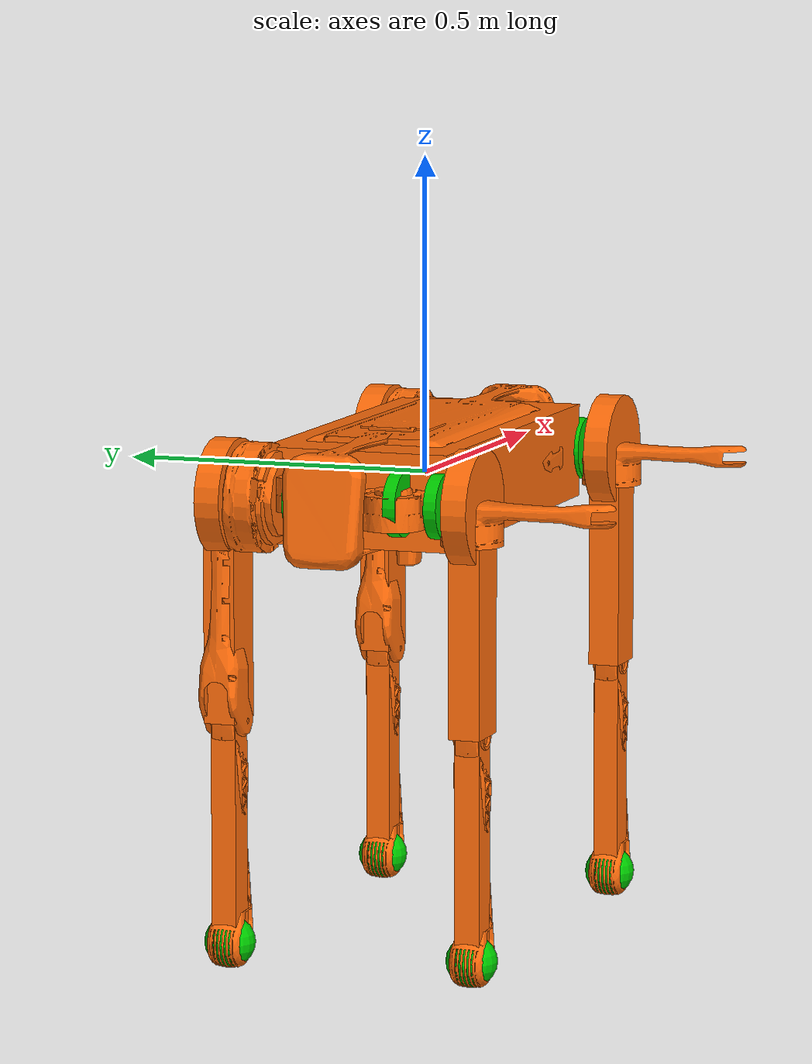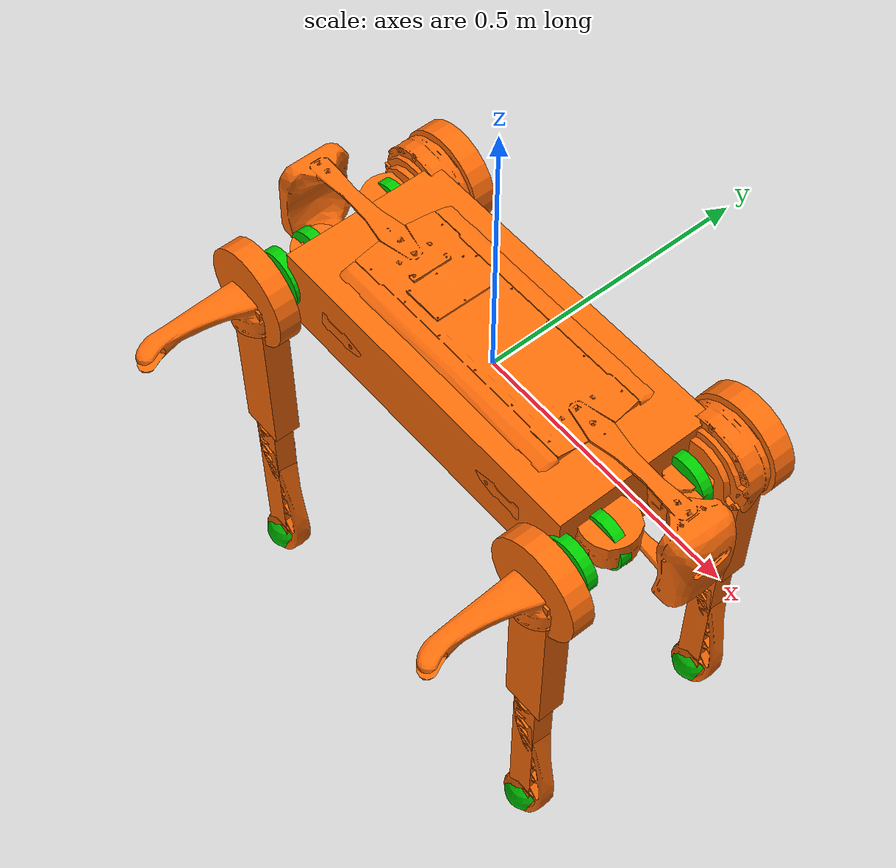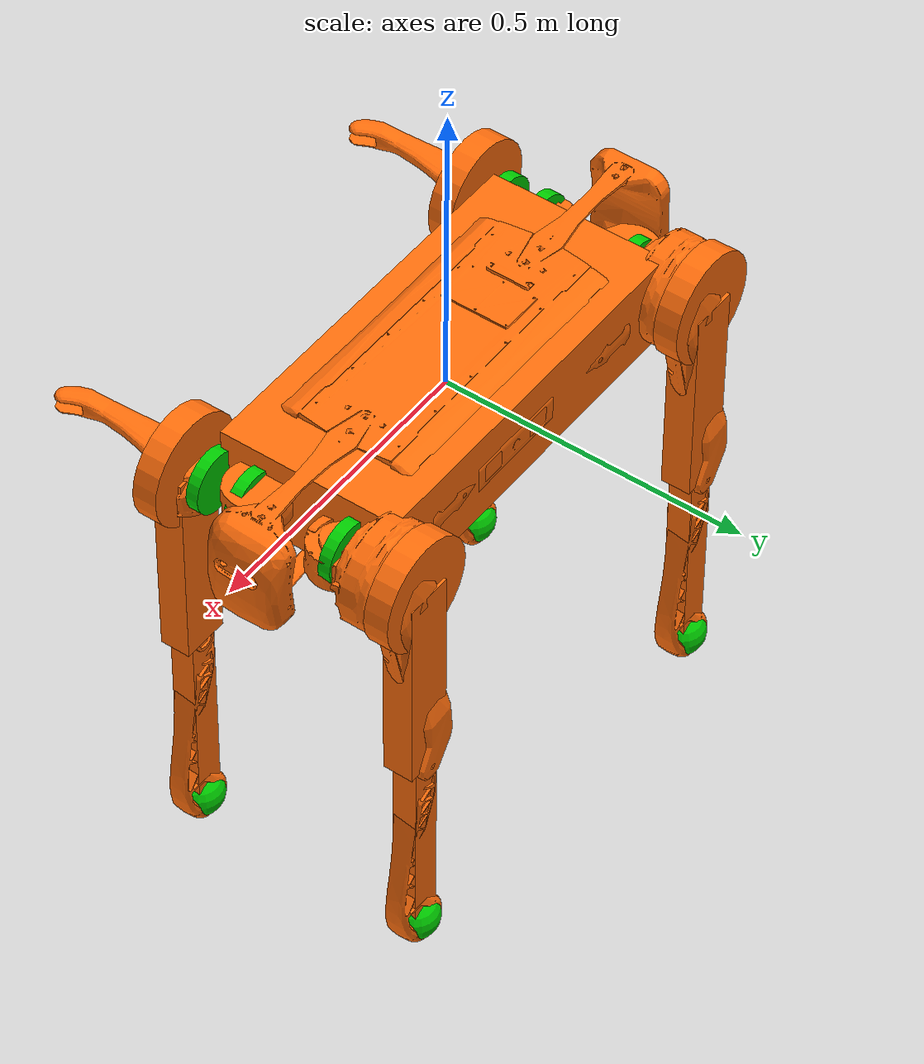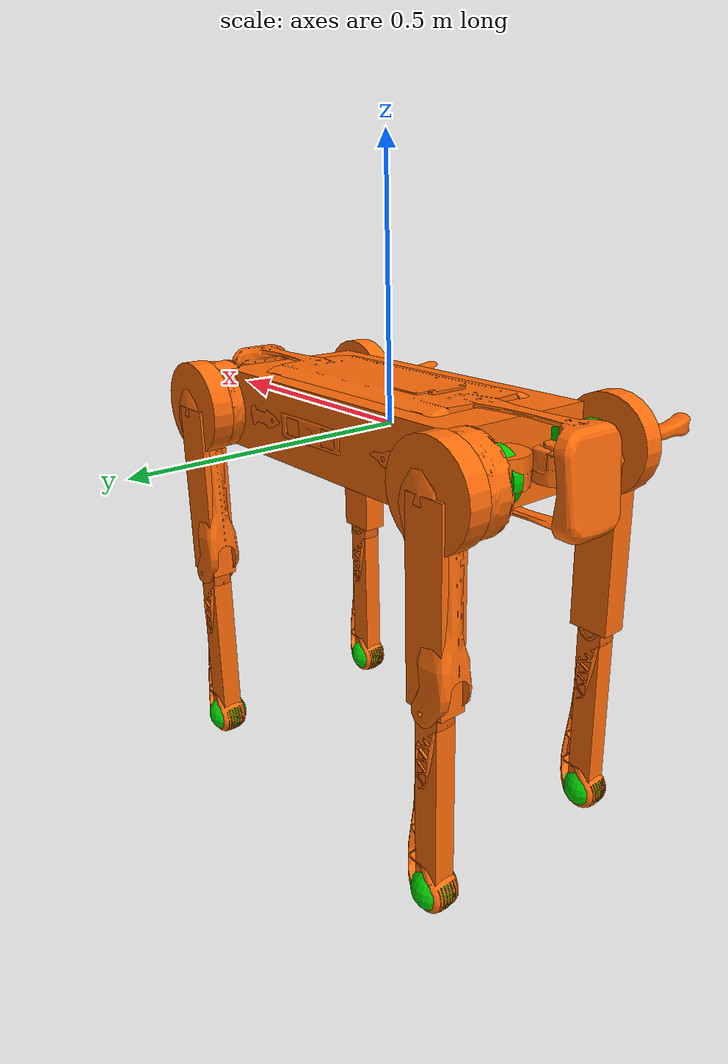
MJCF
<mujoco model="b1_description">
  <compiler angle="radian" meshdir="../meshes/"/>
  <asset>
    <mesh name="trunk" file="trunk.stl"/>
    <mesh name="hip" file="hip.stl"/>
    <mesh name="thigh_mirror" file="thigh_mirror.stl"/>
    <mesh name="calf" file="calf.stl"/>
    <mesh name="thigh" file="thigh.stl"/>
  </asset>
  <worldbody>
    <geom type="mesh" contype="0" conaffinity="0" group="1" density="0" rgba="1 0.423529 0.0392157 1" mesh="trunk"/>
    <geom size="0.3235 0.15 0.075" type="box" rgba="1 0.423529 0.0392157 1"/>
    <geom size="0.0005 0.0005 0.0005" type="box" contype="0" conaffinity="0" group="1" density="0" rgba="0.8 0 0 1"/>
    <geom size="0.0005 0.0005 0.0005" type="box" rgba="0.8 0 0 1"/>
    <geom size="0.05 0.01" pos="0.1955 -0.072 0" quat="0.707107 0 0.707107 0" type="cylinder" contype="0" conaffinity="0" group="1" density="0" rgba="0 0.8 0 1"/>
    <geom size="0.05 0.01" pos="0.1955 -0.072 0" quat="0.707107 0 0.707107 0" type="cylinder" rgba="0 0.8 0 1"/>
    <geom size="0.05 0.01" pos="0.1955 0.072 0" quat="0.707107 0 0.707107 0" type="cylinder" contype="0" conaffinity="0" group="1" density="0" rgba="0 0.8 0 1"/>
    <geom size="0.05 0.01" pos="0.1955 0.072 0" quat="0.707107 0 0.707107 0" type="cylinder" rgba="0 0.8 0 1"/>
    <geom size="0.05 0.01" pos="-0.1955 -0.072 0" quat="0.707107 0 0.707107 0" type="cylinder" contype="0" conaffinity="0" group="1" density="0" rgba="0 0.8 0 1"/>
    <geom size="0.05 0.01" pos="-0.1955 -0.072 0" quat="0.707107 0 0.707107 0" type="cylinder" rgba="0 0.8 0 1"/>
    <geom size="0.05 0.01" pos="-0.1955 0.072 0" quat="0.707107 0 0.707107 0" type="cylinder" contype="0" conaffinity="0" group="1" density="0" rgba="0 0.8 0 1"/>
    <geom size="0.05 0.01" pos="-0.1955 0.072 0" quat="0.707107 0 0.707107 0" type="cylinder" rgba="0 0.8 0 1"/>
    <body name="FR_hip" pos="0.3455 -0.072 0">
      <inertial pos="-0.018016 -0.00971213 9.67456e-05" quat="0.514022 0.512801 0.485949 0.486488" mass="2.366" diaginertia="0.00980696 0.00664332 0.0045362"/>
      <joint name="FR_hip_joint" pos="0 0 0" axis="1 0 0" range="-0.75 0.75"/>
      <geom quat="0 1 0 0" type="mesh" contype="0" conaffinity="0" group="1" density="0" rgba="1 0.423529 0.0392157 1" mesh="hip"/>
      <geom size="0.09 0.02" pos="0 -0.12675 0" quat="0.707107 0.707107 0 0" type="cylinder" rgba="1 0.423529 0.0392157 1"/>
      <geom size="0.05 0.01" pos="0 -0.00935 0" quat="0.707107 0.707107 0 0" type="cylinder" contype="0" conaffinity="0" group="1" density="0" rgba="0 0.8 0 1"/>
      <geom size="0.05 0.01" pos="0 -0.00935 0" quat="0.707107 0.707107 0 0" type="cylinder" rgba="0 0.8 0 1"/>
      <body name="FR_thigh" pos="0 -0.12675 0">
        <inertial pos="-0.000220117 0.0301731 -0.0507383" quat="0.736596 -0.0378368 0.076521 0.670924" mass="4.2" diaginertia="0.0487177 0.0459334 0.00814802"/>
        <joint name="FR_thigh_joint" pos="0 0 0" axis="0 1 0" range="-1 3.5"/>
        <geom type="mesh" contype="0" conaffinity="0" group="1" density="0" rgba="1 0.423529 0.0392157 1" mesh="thigh_mirror"/>
        <geom size="0.175 0.025 0.04" pos="0 0 -0.175" quat="0.707107 0 0.707107 0" type="box" rgba="1 0.423529 0.0392157 1"/>
        <geom size="0.05 0.01" pos="0 0.0519 0" quat="0.707107 0.707107 0 0" type="cylinder" contype="0" conaffinity="0" group="1" density="0" rgba="0 0.8 0 1"/>
        <geom size="0.05 0.01" pos="0 0.0519 0" quat="0.707107 0.707107 0 0" type="cylinder" rgba="0 0.8 0 1"/>
        <body name="FR_calf" pos="0 0 -0.35">
          <inertial pos="0.0049483 0 -0.210919" quat="0.707231 -0.00481122 -0.00483372 0.70695" mass="0.907" diaginertia="0.0162164 0.0160695 0.000406131"/>
          <joint name="FR_calf_joint" pos="0 0 0" axis="0 1 0" range="-2.6 -0.6"/>
          <geom type="mesh" contype="0" conaffinity="0" group="1" density="0" rgba="1 0.423529 0.0392157 1" mesh="calf"/>
          <geom size="0.175 0.02 0.025" pos="0 0 -0.175" quat="0.707107 0 0.707107 0" type="box" rgba="1 0.423529 0.0392157 1"/>
          <geom size="0.03" pos="0 0 -0.35" contype="0" conaffinity="0" group="1" density="0" rgba="0 0.8 0 1"/>
          <geom size="0.04" pos="0 0 -0.35" rgba="0 0.8 0 1"/>
        </body>
      </body>
    </body>
    <body name="FL_hip" pos="0.3455 0.072 0">
      <inertial pos="-0.018016 0.00971213 9.67456e-05" quat="0.486488 0.485949 0.512801 0.514022" mass="2.366" diaginertia="0.00980696 0.00664332 0.0045362"/>
      <joint name="FL_hip_joint" pos="0 0 0" axis="1 0 0" range="-0.75 0.75"/>
      <geom type="mesh" contype="0" conaffinity="0" group="1" density="0" rgba="1 0.423529 0.0392157 1" mesh="hip"/>
      <geom size="0.09 0.02" pos="0 0.12675 0" quat="0.707107 0.707107 0 0" type="cylinder" rgba="1 0.423529 0.0392157 1"/>
      <geom size="0.05 0.01" pos="0 0.00935 0" quat="0.707107 0.707107 0 0" type="cylinder" contype="0" conaffinity="0" group="1" density="0" rgba="0 0.8 0 1"/>
      <geom size="0.05 0.01" pos="0 0.00935 0" quat="0.707107 0.707107 0 0" type="cylinder" rgba="0 0.8 0 1"/>
      <body name="FL_thigh" pos="0 0.12675 0">
        <inertial pos="-0.000220117 -0.0301731 -0.0507383" quat="0.670924 0.076521 -0.0378368 0.736596" mass="4.2" diaginertia="0.0487177 0.0459334 0.00814802"/>
        <joint name="FL_thigh_joint" pos="0 0 0" axis="0 1 0" range="-1 3.5"/>
        <geom type="mesh" contype="0" conaffinity="0" group="1" density="0" rgba="1 0.423529 0.0392157 1" mesh="thigh"/>
        <geom size="0.175 0.025 0.04" pos="0 0 -0.175" quat="0.707107 0 0.707107 0" type="box" rgba="1 0.423529 0.0392157 1"/>
        <geom size="0.05 0.01" pos="0 -0.0519 0" quat="0.707107 0.707107 0 0" type="cylinder" contype="0" conaffinity="0" group="1" density="0" rgba="0 0.8 0 1"/>
        <geom size="0.05 0.01" pos="0 -0.0519 0" quat="0.707107 0.707107 0 0" type="cylinder" rgba="0 0.8 0 1"/>
        <body name="FL_calf" pos="0 0 -0.35">
          <inertial pos="0.0049483 0 -0.210919" quat="0.707231 -0.00481122 -0.00483372 0.70695" mass="0.907" diaginertia="0.0162164 0.0160695 0.000406131"/>
          <joint name="FL_calf_joint" pos="0 0 0" axis="0 1 0" range="-2.6 -0.6"/>
          <geom type="mesh" contype="0" conaffinity="0" group="1" density="0" rgba="1 0.423529 0.0392157 1" mesh="calf"/>
          <geom size="0.175 0.02 0.025" pos="0 0 -0.175" quat="0.707107 0 0.707107 0" type="box" rgba="1 0.423529 0.0392157 1"/>
          <geom size="0.03" pos="0 0 -0.35" contype="0" conaffinity="0" group="1" density="0" rgba="0 0.8 0 1"/>
          <geom size="0.04" pos="0 0 -0.35" rgba="0 0.8 0 1"/>
        </body>
      </body>
    </body>
    <body name="RR_hip" pos="-0.3455 -0.072 0">
      <inertial pos="0.018016 -0.00971213 9.67456e-05" quat="0.485949 0.486488 0.514022 0.512801" mass="2.366" diaginertia="0.00980696 0.00664332 0.0045362"/>
      <joint name="RR_hip_joint" pos="0 0 0" axis="1 0 0" range="-0.75 0.75"/>
      <geom quat="0 0 0 -1" type="mesh" contype="0" conaffinity="0" group="1" density="0" rgba="1 0.423529 0.0392157 1" mesh="hip"/>
      <geom size="0.09 0.02" pos="0 -0.12675 0" quat="0.707107 0.707107 0 0" type="cylinder" rgba="1 0.423529 0.0392157 1"/>
      <geom size="0.05 0.01" pos="0 -0.00935 0" quat="0.707107 0.707107 0 0" type="cylinder" contype="0" conaffinity="0" group="1" density="0" rgba="0 0.8 0 1"/>
      <geom size="0.05 0.01" pos="0 -0.00935 0" quat="0.707107 0.707107 0 0" type="cylinder" rgba="0 0.8 0 1"/>
      <body name="RR_thigh" pos="0 -0.12675 0">
        <inertial pos="-0.000220117 0.0301731 -0.0507383" quat="0.736596 -0.0378368 0.076521 0.670924" mass="4.2" diaginertia="0.0487177 0.0459334 0.00814802"/>
        <joint name="RR_thigh_joint" pos="0 0 0" axis="0 1 0" range="-1 3.5"/>
        <geom type="mesh" contype="0" conaffinity="0" group="1" density="0" rgba="1 0.423529 0.0392157 1" mesh="thigh_mirror"/>
        <geom size="0.175 0.025 0.04" pos="0 0 -0.175" quat="0.707107 0 0.707107 0" type="box" rgba="1 0.423529 0.0392157 1"/>
        <geom size="0.05 0.01" pos="0 0.0519 0" quat="0.707107 0.707107 0 0" type="cylinder" contype="0" conaffinity="0" group="1" density="0" rgba="0 0.8 0 1"/>
        <geom size="0.05 0.01" pos="0 0.0519 0" quat="0.707107 0.707107 0 0" type="cylinder" rgba="0 0.8 0 1"/>
        <body name="RR_calf" pos="0 0 -0.35">
          <inertial pos="0.0049483 0 -0.210919" quat="0.707231 -0.00481122 -0.00483372 0.70695" mass="0.907" diaginertia="0.0162164 0.0160695 0.000406131"/>
          <joint name="RR_calf_joint" pos="0 0 0" axis="0 1 0" range="-2.6 -0.6"/>
          <geom type="mesh" contype="0" conaffinity="0" group="1" density="0" rgba="1 0.423529 0.0392157 1" mesh="calf"/>
          <geom size="0.175 0.02 0.025" pos="0 0 -0.175" quat="0.707107 0 0.707107 0" type="box" rgba="1 0.423529 0.0392157 1"/>
          <geom size="0.03" pos="0 0 -0.35" contype="0" conaffinity="0" group="1" density="0" rgba="0 0.8 0 1"/>
          <geom size="0.04" pos="0 0 -0.35" rgba="0 0.8 0 1"/>
        </body>
      </body>
    </body>
    <body name="RL_hip" pos="-0.3455 0.072 0">
      <inertial pos="0.018016 0.00971213 9.67456e-05" quat="0.512801 0.514022 0.486488 0.485949" mass="2.366" diaginertia="0.00980696 0.00664332 0.0045362"/>
      <joint name="RL_hip_joint" pos="0 0 0" axis="1 0 0" range="-0.75 0.75"/>
      <geom quat="0 0 1 0" type="mesh" contype="0" conaffinity="0" group="1" density="0" rgba="1 0.423529 0.0392157 1" mesh="hip"/>
      <geom size="0.09 0.02" pos="0 0.12675 0" quat="0.707107 0.707107 0 0" type="cylinder" rgba="1 0.423529 0.0392157 1"/>
      <geom size="0.05 0.01" pos="0 0.00935 0" quat="0.707107 0.707107 0 0" type="cylinder" contype="0" conaffinity="0" group="1" density="0" rgba="0 0.8 0 1"/>
      <geom size="0.05 0.01" pos="0 0.00935 0" quat="0.707107 0.707107 0 0" type="cylinder" rgba="0 0.8 0 1"/>
      <body name="RL_thigh" pos="0 0.12675 0">
        <inertial pos="-0.000220117 -0.0301731 -0.0507383" quat="0.670924 0.076521 -0.0378368 0.736596" mass="4.2" diaginertia="0.0487177 0.0459334 0.00814802"/>
        <joint name="RL_thigh_joint" pos="0 0 0" axis="0 1 0" range="-1 3.5"/>
        <geom type="mesh" contype="0" conaffinity="0" group="1" density="0" rgba="1 0.423529 0.0392157 1" mesh="thigh"/>
        <geom size="0.175 0.025 0.04" pos="0 0 -0.175" quat="0.707107 0 0.707107 0" type="box" rgba="1 0.423529 0.0392157 1"/>
        <geom size="0.05 0.01" pos="0 -0.0519 0" quat="0.707107 0.707107 0 0" type="cylinder" contype="0" conaffinity="0" group="1" density="0" rgba="0 0.8 0 1"/>
        <geom size="0.05 0.01" pos="0 -0.0519 0" quat="0.707107 0.707107 0 0" type="cylinder" rgba="0 0.8 0 1"/>
        <body name="RL_calf" pos="0 0 -0.35">
          <inertial pos="0.0049483 0 -0.210919" quat="0.707231 -0.00481122 -0.00483372 0.70695" mass="0.907" diaginertia="0.0162164 0.0160695 0.000406131"/>
          <joint name="RL_calf_joint" pos="0 0 0" axis="0 1 0" range="-2.6 -0.6"/>
          <geom type="mesh" contype="0" conaffinity="0" group="1" density="0" rgba="1 0.423529 0.0392157 1" mesh="calf"/>
          <geom size="0.175 0.02 0.025" pos="0 0 -0.175" quat="0.707107 0 0.707107 0" type="box" rgba="1 0.423529 0.0392157 1"/>
          <geom size="0.03" pos="0 0 -0.35" contype="0" conaffinity="0" group="1" density="0" rgba="0 0.8 0 1"/>
          <geom size="0.04" pos="0 0 -0.35" rgba="0 0.8 0 1"/>
        </body>
      </body>
    </body>
  </worldbody>
</mujoco>
